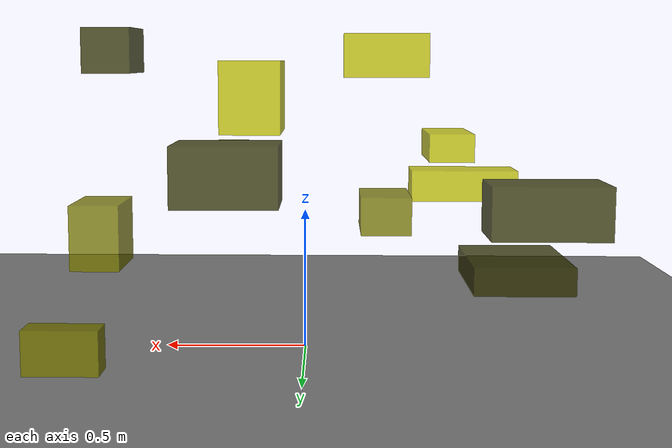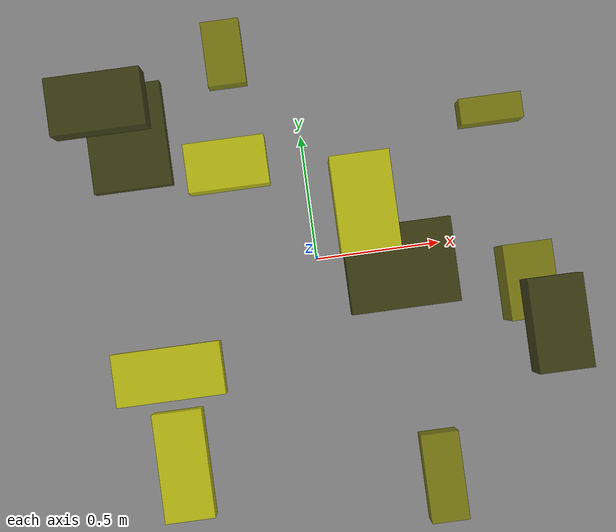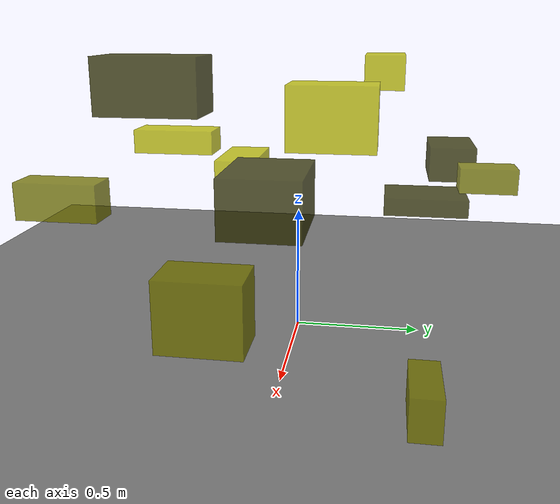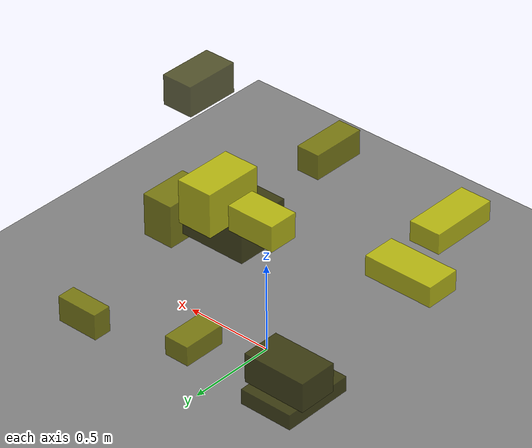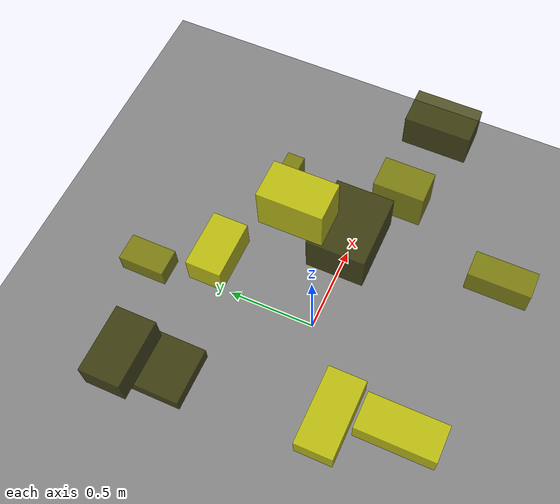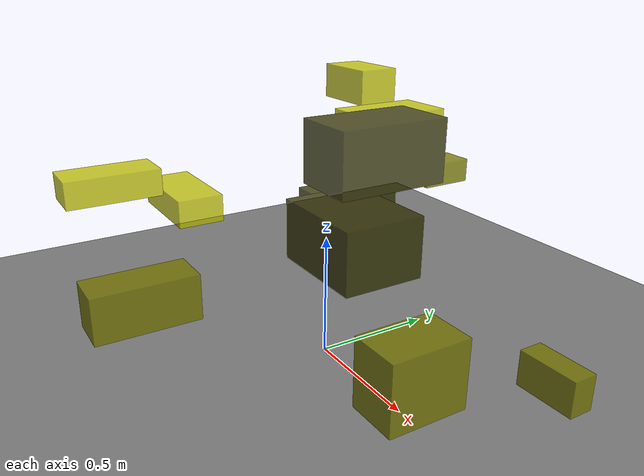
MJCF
<?xml version="1.0"?>
<mujoco model="obstacle_scene">
  <compiler angle="radian" coordinate="local"/>
  <option timestep="0.001" gravity="0 0 -9.81"/>

  <asset>
    <material name="obstacle_mat" rgba="0.8 0.8 0.0 0.8"/>
    <material name="ground_mat" rgba="0.5 0.5 0.5 1"/>
  </asset>

  <worldbody>
    <!-- Ground plane -->
    <geom name="ground" type="plane" size="3 3 0.1" material="ground_mat"/>

    <!-- Obstacles -->
    <body name="obstacle_0" pos="-0.655363 0.541712 0.392887">
      <geom name="obs_0" type="box" size="0.148465 0.197113 0.041777" rgba="0.2 0.2 0.0 0.8"/>
    </body>
    <body name="obstacle_1" pos="0.345076 -0.852385 0.602037">
      <geom name="obs_1" type="box" size="0.068167 0.159237 0.071936" rgba="0.5 0.5 0.0 0.8"/>
    </body>
    <body name="obstacle_2" pos="0.175616 0.148197 0.909397">
      <geom name="obs_2" type="box" size="0.100904 0.165392 0.120847" rgba="0.8 0.8 0.0 0.8"/>
    </body>
    <body name="obstacle_3" pos="0.746256 -0.335554 1.067754">
      <geom name="obs_3" type="box" size="0.090440 0.155335 0.085252" rgba="0.2 0.2 0.0 0.8"/>
    </body>
    <body name="obstacle_4" pos="0.776721 -0.194833 0.381165">
      <geom name="obs_4" type="box" size="0.091807 0.141981 0.121845" rgba="0.5 0.5 0.0 0.8"/>
    </body>
    <body name="obstacle_5" pos="-0.600342 -0.357484 0.554508">
      <geom name="obs_5" type="box" size="0.200548 0.096554 0.057662" rgba="0.8 0.8 0.0 0.8"/>
    </body>
    <body name="obstacle_6" pos="-0.725896 0.656446 0.594439">
      <geom name="obs_6" type="box" size="0.174757 0.105633 0.079581" rgba="0.2 0.2 0.0 0.8"/>
    </body>
    <body name="obstacle_7" pos="0.760064 0.494382 0.116410">
      <geom name="obs_7" type="box" size="0.123473 0.051697 0.073642" rgba="0.5 0.5 0.0 0.8"/>
    </body>
    <body name="obstacle_8" pos="-0.265592 0.327668 1.046667">
      <geom name="obs_8" type="box" size="0.134268 0.080931 0.069231" rgba="0.8 0.8 0.0 0.8"/>
    </body>
    <body name="obstacle_9" pos="0.287695 -0.077664 0.619108">
      <geom name="obs_9" type="box" size="0.194570 0.152485 0.112562" rgba="0.2 0.2 0.0 0.8"/>
    </body>
    <body name="obstacle_10" pos="-0.243306 0.771670 0.605196">
      <geom name="obs_10" type="box" size="0.069381 0.117301 0.052475" rgba="0.5 0.5 0.0 0.8"/>
    </body>
    <body name="obstacle_11" pos="-0.575830 -0.680725 0.679628">
      <geom name="obs_11" type="box" size="0.089557 0.194320 0.056535" rgba="0.8 0.8 0.0 0.8"/>
    </body>
  </worldbody>
</mujoco>
